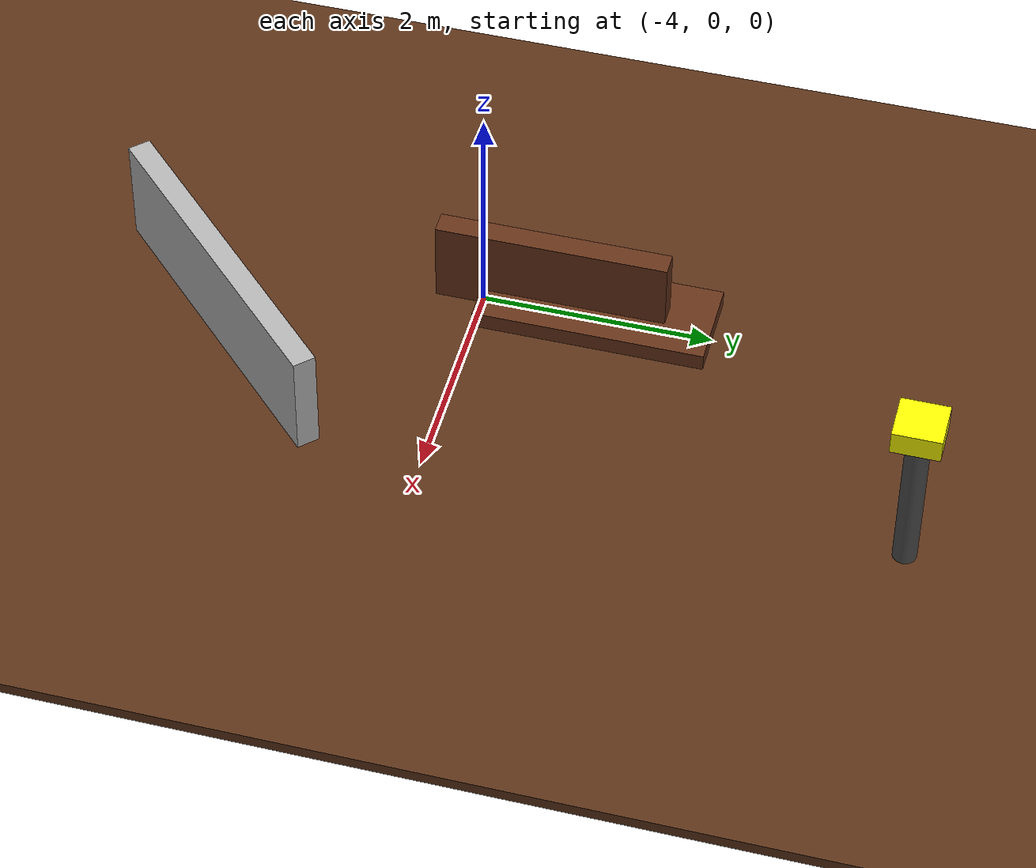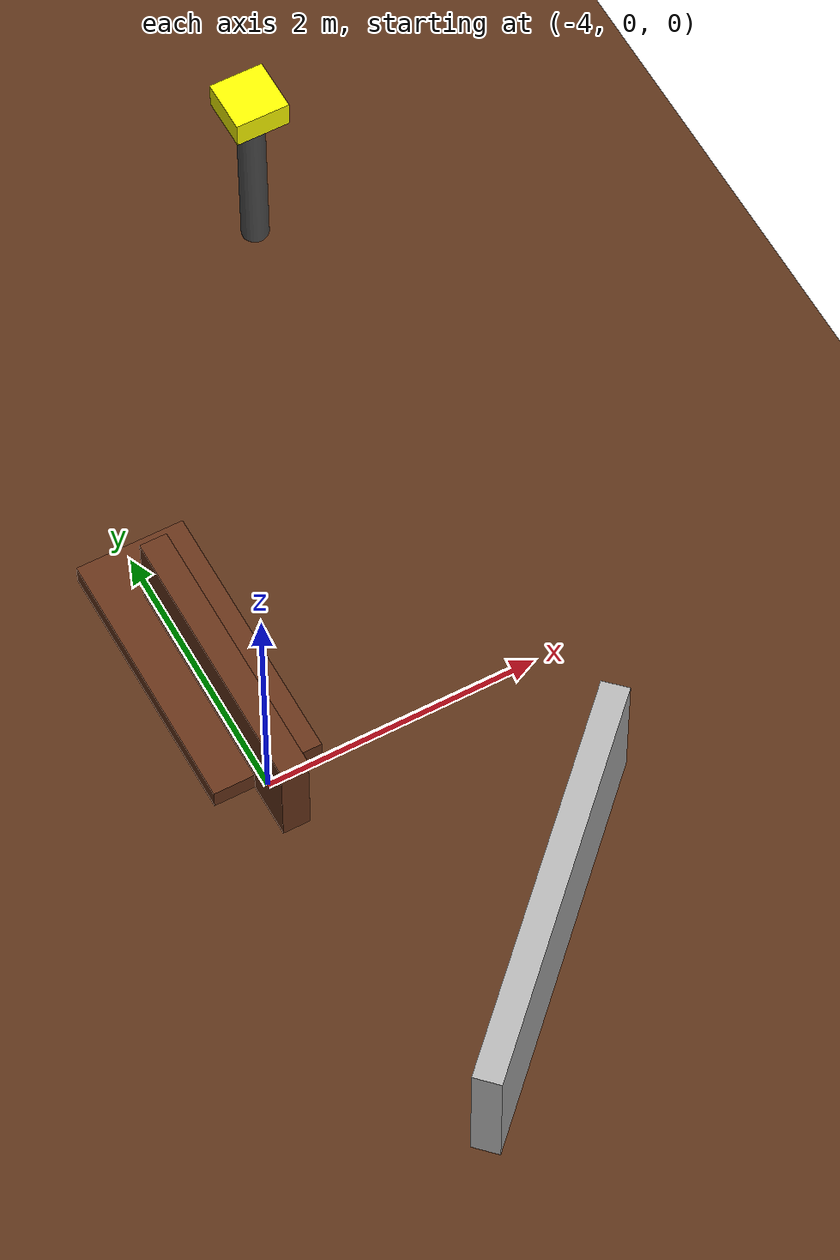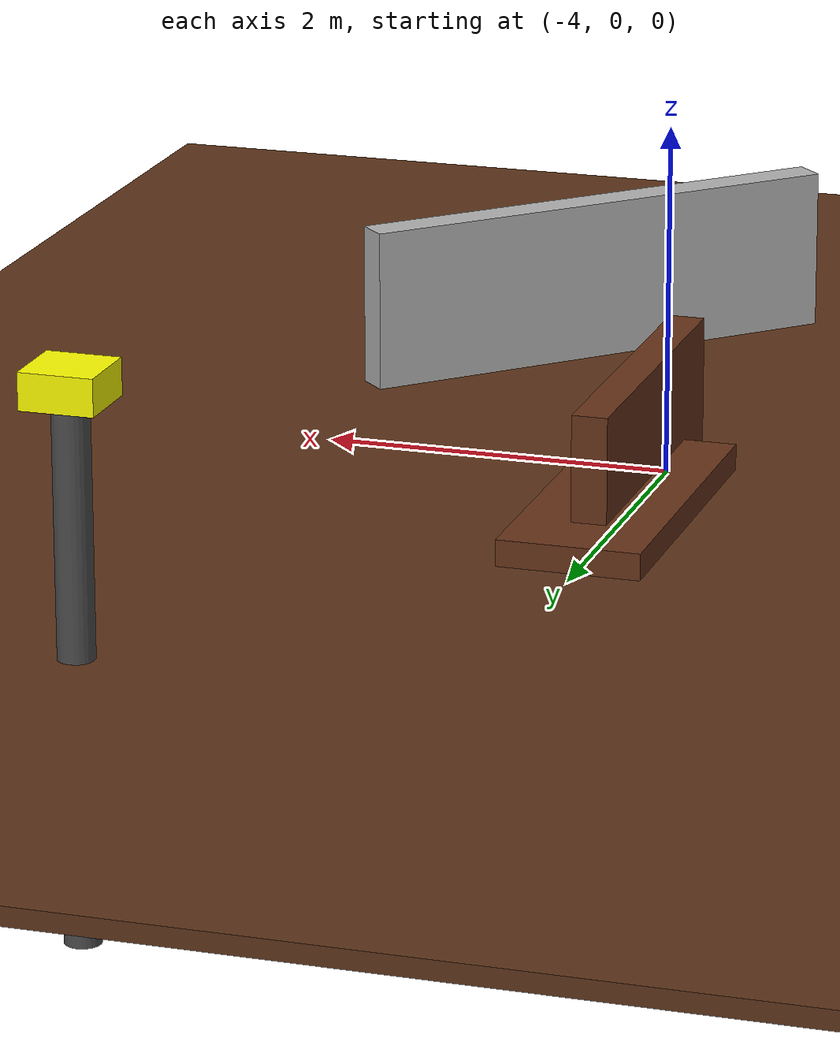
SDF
<sdf version="1.6">
 <world name="default">
  <include><uri>model://ground_plane</uri></include>
  <include><uri>model://sun</uri></include>
  <model name="brown_floor">
   <static>true</static>
   <link name="link">
    <visual name="visual">
     <geometry><box><size>20 20 0.1</size></box></geometry>
     <material>
      <ambient>0.36 0.20 0.10 1.0</ambient>
      <diffuse>0.36 0.20 0.10 1.0</diffuse>
      <specular>0.2 0.2 0.2 1.0</specular>
     </material>
    </visual>
   </link>
  </model>
  <model name="lamp_post_1">
   <static>true</static>
   <pose>-2 4 0 0 0 0</pose>
   <link name="link">
    <collision name="collision_pole">
     <geometry><cylinder><radius>0.1</radius><length>3.0</length></cylinder></geometry>
    </collision>
    <visual name="visual_pole">
     <geometry><cylinder><radius>0.1</radius><length>3.0</length></cylinder></geometry>
     <material><ambient>0.3 0.3 0.3 1</ambient><diffuse>0.3 0.3 0.3 1</diffuse></material>
    </visual>
    <visual name="visual_light">
     <pose>0 0 1.5 0 0 0</pose>
     <geometry><box><size>0.4 0.4 0.2</size></box></geometry>
     <material><ambient>1 1 0 1</ambient><diffuse>1 1 0 1</diffuse><emissive>1 1 0 1</emissive></material>
    </visual>
   </link>
  </model>
  <model name="lamp_post_2"><static>true</static><pose>4 4 0 0 0 0</pose></model>
  <model name="grey_wall_1">
   <static>true</static>
   <pose>-3 -2 0 0 0 0.785</pose>
   <link name="link">
    <collision name="collision"><geometry><box><size>3.0 0.2 2.0</size></box></geometry></collision>
    <visual name="visual">
     <geometry><box><size>3.0 0.2 2.0</size></box></geometry>
     <material><ambient>0.7 0.7 0.7 1</ambient><diffuse>0.7 0.7 0.7 1</diffuse></material>
    </visual>
   </link>
  </model>
  <model name="sofa_1">
   <static>true</static>
   <pose>-4 1 0 0 0 1.57</pose>
   <link name="link">
    <collision name="collision_base"><geometry><box><size>2.0 0.8 0.4</size></box></geometry></collision>
    <collision name="collision_back">
     <pose>-0.4 0 0.4 0 0 0</pose>
     <geometry><box><size>2.0 0.2 0.8</size></box></geometry>
    </collision>
    <visual name="visual_base">
     <geometry><box><size>2.0 0.8 0.4</size></box></geometry>
     <material><ambient>0.4 0.2 0.1 1</ambient><diffuse>0.4 0.2 0.1 1</diffuse></material>
    </visual>
    <visual name="visual_back">
     <pose>-0.4 0 0.4 0 0 0</pose>
     <geometry><box><size>2.0 0.2 0.8</size></box></geometry>
     <material><ambient>0.4 0.2 0.1 1</ambient><diffuse>0.4 0.2 0.1 1</diffuse></material>
    </visual>
   </link>
  </model>
 </world>
</sdf>
